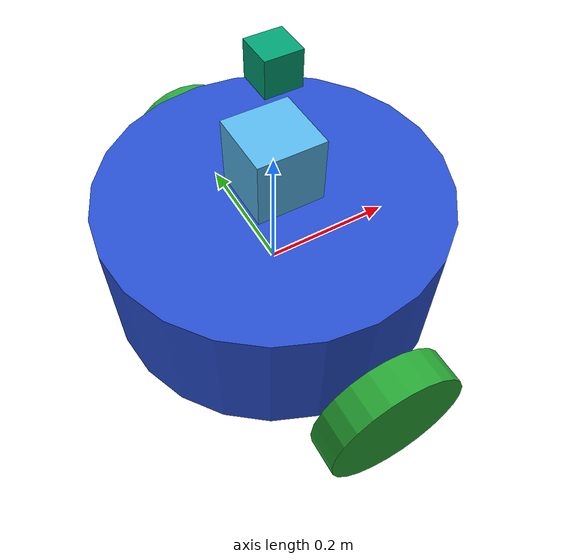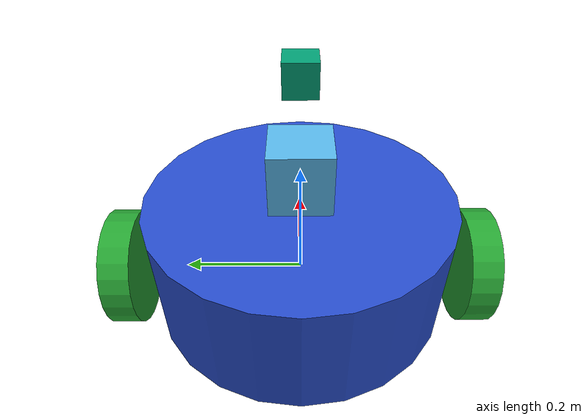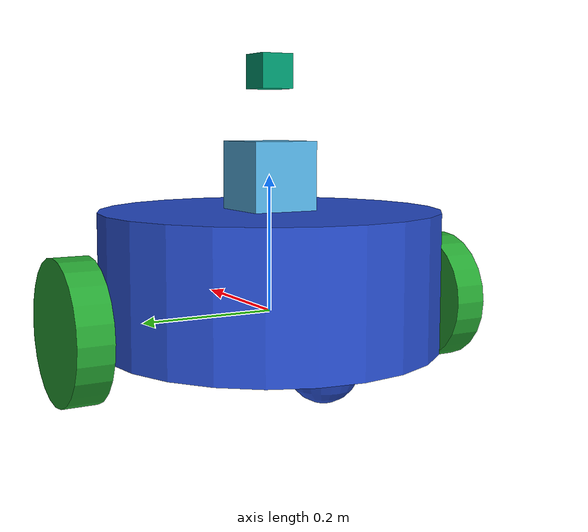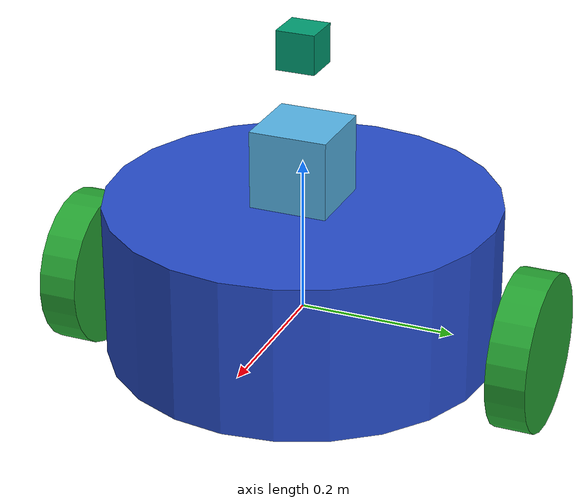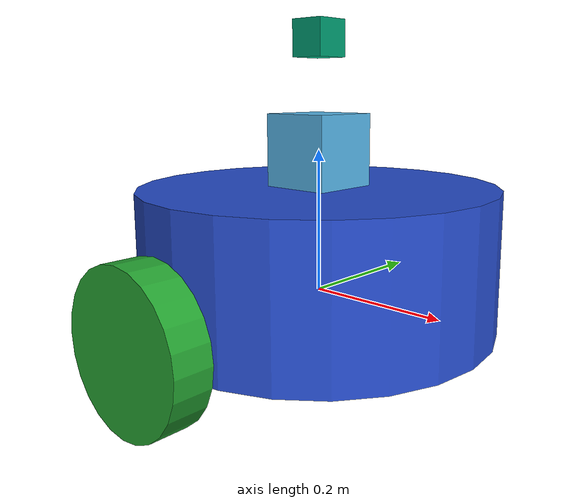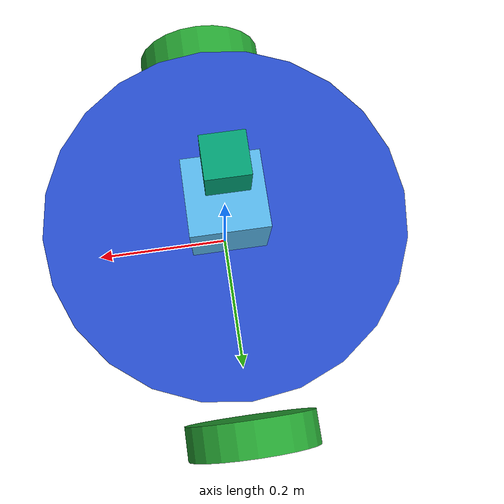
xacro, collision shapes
<?xml version='1.0'?>

<robot name="myrobot" xmlns:xacro="http://www.ros.org/wiki/xacro">

  <xacro:include filename="$(find project)/urdf/myrobot.gazebo" />
  <!-- argumentos -->
  <xacro:arg name="base_frame"    default="chassis" />

  <gazebo reference="left_wheel">
    <material>Gazebo/Green</material>
  </gazebo>

  <gazebo reference="right_wheel">
    <material>Gazebo/Green</material>
  </gazebo>

  <gazebo reference="$(arg base_frame)">
    <material>Gazebo/Blue</material>
  </gazebo>

  <gazebo reference="camera_depth_optical">
    <material>Gazebo/black</material>
  </gazebo>

  <gazebo reference="left_camera_optical">
    <material>Gazebo/black</material>
  </gazebo>

  <gazebo reference="hokuyo_optical">
    <material>Gazebo/black</material>
  </gazebo>

  <link name="robot_footprint"></link>

  <joint name="robot_footprint_joint" type="fixed">
    <origin xyz="0 0 0" rpy="0 0 0" />
    <parent link="robot_footprint"/>
    <child link="$(arg base_frame)" />
  </joint>

  <joint name="hokuyo_joint" type="fixed">
    <origin xyz="0 0 0.2" rpy="0 0 0" />
    <parent link="$(arg base_frame)"/>
    <child link="hokuyo" />
    <axis xyz="0 1 0"/>
  </joint>

  <joint type="continuous" name="left_wheel_hinge">
    <origin xyz="0 0.30 0" rpy="0 0 0" />
    <parent link="$(arg base_frame)"/>
    <child link="left_wheel" />
    <axis xyz="0 1 0" rpy="0 0 0" />
    <limit effort="10000" velocity="1000" />
    <dynamics damping="1.0" friction="1.0" />
  </joint>

  <joint type="continuous" name="right_wheel_hinge">
    <origin xyz="0 -0.30 0" rpy="0 0 0" />
    <parent link="$(arg base_frame)"/>
    <child link="right_wheel" />
    <axis xyz="0 1 0" rpy="0 0 0" />
    <limit effort="10000" velocity="1000" />
    <dynamics damping="1.0" friction="1.0" />
  </joint>

  <joint name="camera_depth_frame_joint" type="fixed">
     <origin xyz="0 0 0.35" rpy="0 0 0" />
     <parent link="$(arg base_frame)" />
     <child link="camera_depth_frame" />
  </joint>

  <link name="hokuyo">
    <inertial>
      <mass value="1e-5"/>
      <origin xyz="0 0 0" rpy="0 0 0"/>
      <inertia
        ixx="1e-6" ixy="0.0" ixz="0.0"
        iyy="1e-6" iyz="0.0"
        izz="1e-6"
      />
    </inertial>

    <collision>
      <origin xyz="0 0 0" rpy="0 0 0"/>
      <geometry>
        <box size="0.1 0.1 0.1"/>
      </geometry>
    </collision>

    <visual>
      <origin xyz="0.1 0 0" rpy="0 0 0"/>
      <geometry>
        <mesh filename="package://project/meshes/hokuyo.dae"/>
      </geometry>
    </visual>

  </link>

  <link name="camera_depth_frame">
    <inertial>
      <mass value="0.1"/>
      <origin xyz="0 0 0" rpy="0 0 0"/>
      <inertia
        ixx="1e-6" ixy="0.0" ixz="0.0"
        iyy="1e-6" iyz="0.0"
        izz="1e-6"
      />
    </inertial>

    <collision>
      <origin xyz="0 0 0" rpy="0 0 0"/>
      <geometry>
        <box size="0.05 0.05 0.05"/>
      </geometry>
    </collision>

    <visual>
      <origin xyz="0 0 0" rpy="0 0 1.5707"/>
      <geometry>
        <mesh filename="package://project/meshes/kinect.dae"/>
      </geometry>
    </visual>

  </link>

  <link name="left_wheel">
    <inertial>
      <mass value="5"/>
      <origin xyz="0 0 0" rpy="0 1.5707 1.5707"/>
      <inertia
        ixx="0.1" ixy="0.0" ixz="0.0"
        iyy="0.1" iyz="0.0"
        izz="0.1"
      />
    </inertial>

    <collision>
      <origin xyz="0 0 0" rpy="0 1.5707 1.5707"/>
      <geometry>
        <cylinder radius="0.1" length="0.05"/>
      </geometry>
    </collision>

    <visual>
      <origin xyz="0 0 0" rpy="0 1.5707 1.5707"/>
      <geometry>
        <cylinder radius="0.1" length="0.05"/>
      </geometry>
    </visual>

  </link>

  <link name="right_wheel">
    <inertial>
      <mass value="5"/>
      <origin xyz="0 0 0" rpy="0 1.5707 1.5707"/>
      <inertia
        ixx="0.1" ixy="0.0" ixz="0.0"
        iyy="0.1" iyz="0.0"
        izz="0.1"
      />
    </inertial>

    <collision>
      <origin xyz="0 0 0" rpy="0 1.5707 1.5707"/>
      <geometry>
        <cylinder radius="0.1" length="0.05"/>
      </geometry>
    </collision>

    <visual>
      <origin xyz="0 0 0" rpy="0 1.5707 1.5707"/>
      <geometry>
        <cylinder radius="0.1" length="0.05"/>
      </geometry>
    </visual>

  </link>

  <link name='$(arg base_frame)'>
    <pose>0 0 0.1 0 0 0</pose>

    <inertial>
      <mass value="15.0"/>
      <origin xyz="0.0 0 0" rpy=" 0 0 0"/>
      <inertia
          ixx="0.1" ixy="0" ixz="0"
          iyy="0.1" iyz="0"
          izz="0.1"
      />
    </inertial>

    <collision name='collision'>
      <origin xyz="0 0 0.05" rpy=" 0 0 0"/>
      <geometry>
        <cylinder length="0.2" radius="0.25"/>
      </geometry>
    </collision>

    <visual name='$(arg base_frame)'>
      <origin xyz="0 0 0.05" rpy=" 0 0 0"/>
      <geometry>
       <cylinder length="0.2" radius="0.25"/>
      </geometry>
    </visual>

    <collision name='back_caster_collision'>
      <origin xyz="-0.15 0 -0.05" rpy=" 0 0 0"/>
      <geometry>
        <sphere radius="0.0499"/>
      </geometry>
    </collision>

    <visual name='back_caster_visual'>
      <origin xyz="-0.15 0 -0.05" rpy=" 0 0 0"/>
      <geometry>
        <sphere radius="0.05"/>
      </geometry>
    </visual>

    <collision name='front_caster_collision'>
      <origin xyz="0.15 0 -0.05" rpy=" 0 0 0"/>
      <geometry>
        <sphere radius="0.0499"/>
      </geometry>
    </collision>

    <visual name='front_caster_visual'>
      <origin xyz="0.15 0 -0.05" rpy=" 0 0 0"/>
      <geometry>
        <sphere radius="0.05"/>
      </geometry>
    </visual>

  </link>

</robot>
